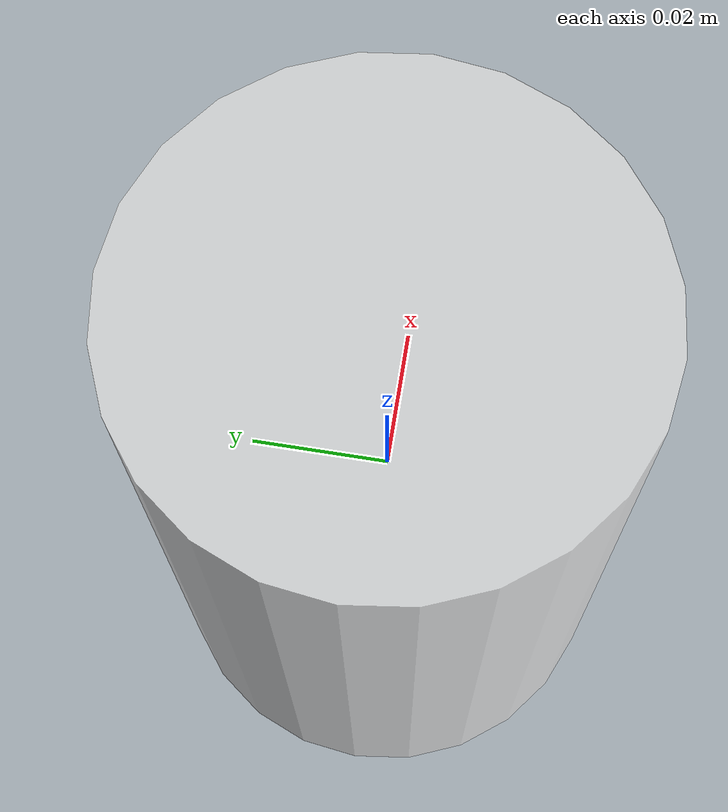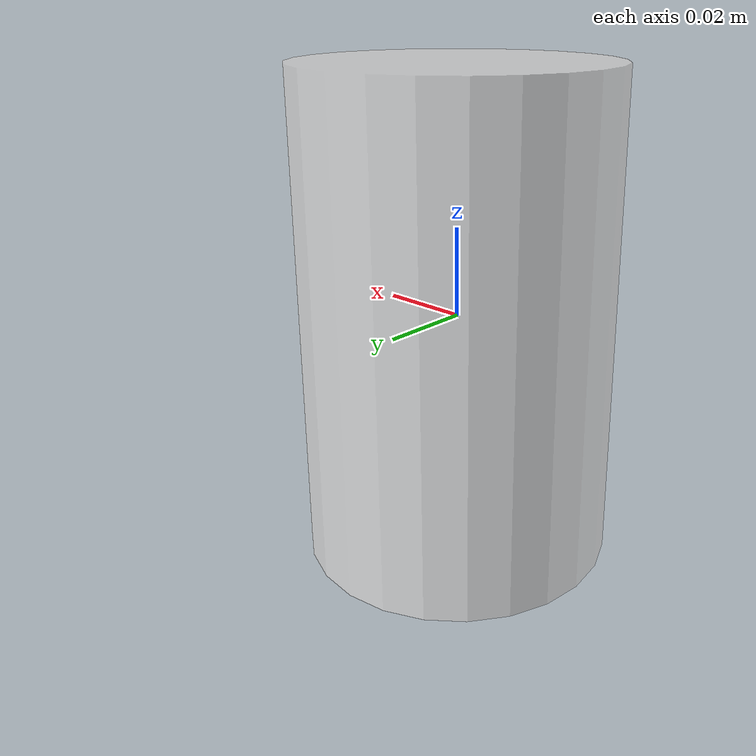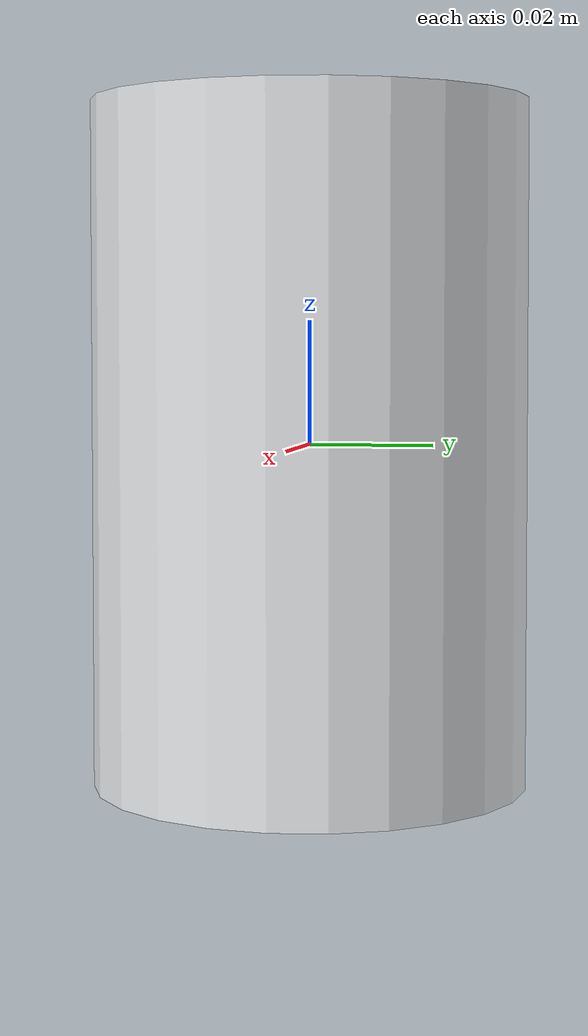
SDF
<?xml version="1.0"?>
<sdf version="1.9">
  <model name="cup">
    <static>false</static>
    <link name="cup_link">
      <pose>0 0 0 0 0 0</pose>
      <inertial>
        <mass>0.05</mass>
        <inertia>
          <ixx>0.00008</ixx>
          <iyy>0.00008</iyy>
          <izz>0.00005</izz>
          <ixy>0</ixy>
          <ixz>0</ixz>
          <iyz>0</iyz>
        </inertia>
      </inertial>
      <visual name="cup_body">
        <geometry>
          <cylinder>
            <radius>0.035</radius>
            <length>0.11</length>
          </cylinder>
        </geometry>
        <material>
          <ambient>0.92 0.92 0.92 0.85</ambient>
          <diffuse>0.92 0.92 0.92 0.85</diffuse>
        </material>
      </visual>
      <collision name="cup_collision">
        <geometry>
          <cylinder>
            <radius>0.035</radius>
            <length>0.11</length>
          </cylinder>
        </geometry>
        <surface>
          <friction>
            <ode>
              <mu>0.8</mu>
              <mu2>0.8</mu2>
            </ode>
          </friction>
          <contact>
            <ode>
              <kp>100000</kp>
              <kd>10</kd>
            </ode>
          </contact>
        </surface>
      </collision>
      <visual name="liquid_marker">
        <pose>0 0 0.025 0 0 0</pose>
        <geometry>
          <cylinder>
            <radius>0.030</radius>
            <length>0.050</length>
          </cylinder>
        </geometry>
        <material>
          <ambient>0.2 0.45 1.0 0.75</ambient>
          <diffuse>0.2 0.45 1.0 0.75</diffuse>
        </material>
      </visual>
    </link>
  </model>
</sdf>
